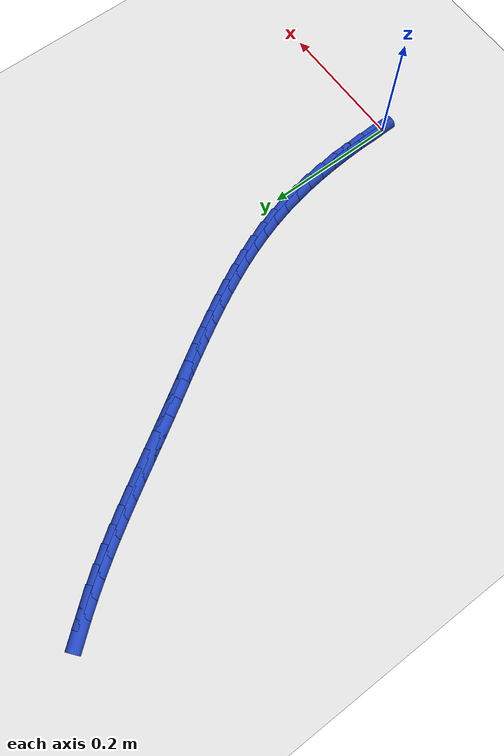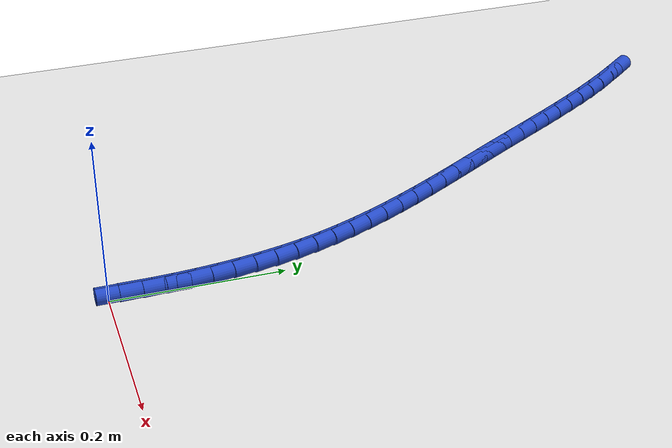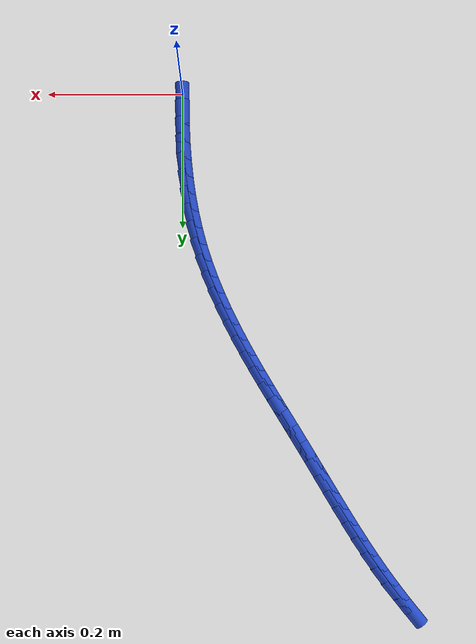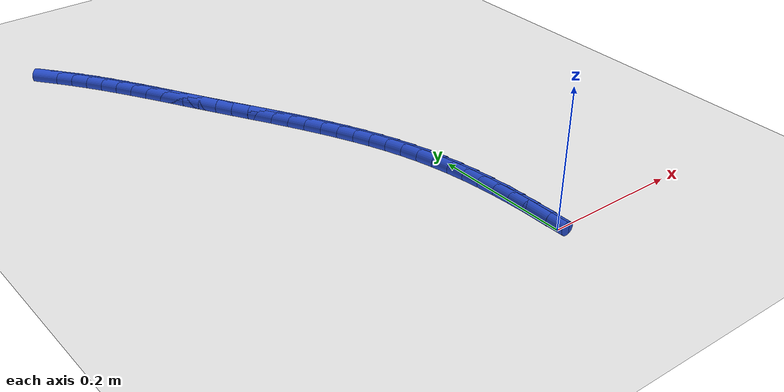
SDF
<sdf version="1.6">
 <world name="default">
  <model name="ground_plane">
   <static>1</static>
   <link name="link">
    <collision name="collision">
     <geometry><plane><normal>0 0 1</normal><size>100 100</size></plane></geometry>
     <surface><friction><ode><mu>100</mu><mu2>50</mu2></ode></friction></surface>
    </collision>
    <visual name="visual">
     <cast_shadows>0</cast_shadows>
     <geometry><plane><normal>0 0 1</normal><size>100 100</size></plane></geometry>
     <material>
      <script><uri>file://media/materials/scripts/gazebo.material</uri><name>Gazebo/WhiteGlow</name></script>
     </material>
    </visual>
   </link>
  </model>
  <model name="line">
   <link name="link_1">
    <pose>0.00013879050816110192 0.02581706088510633 0.01 0 1.57 -1.552005356154008</pose>
    <collision name="collision">
     <geometry><cylinder><radius>0.01</radius><length>0.08</length></cylinder></geometry>
    </collision>
    <visual name="visual">
     <material>
      <script><name>Gazebo/Blue</name><uri>file://media/materials/scripts/gazebo.material</uri></script>
     </material>
     <geometry><cylinder><radius>0.01</radius><length>0.08</length></cylinder></geometry>
    </visual>
   </link>
   <link name="link_2">
    <pose>-0.0003471206326306521 0.0516727740835173 0.01 0 1.57 -1.5254065276339013</pose>
    <collision name="collision">
     <geometry><cylinder><radius>0.01</radius><length>0.08</length></cylinder></geometry>
    </collision>
    <visual name="visual">
     <material>
      <script><name>Gazebo/Blue</name><uri>file://media/materials/scripts/gazebo.material</uri></script>
     </material>
     <geometry><cylinder><radius>0.01</radius><length>0.08</length></cylinder></geometry>
    </visual>
   </link>
   <link name="link_3">
    <pose>-0.001520814700794198 0.07751311598907709 0.01 0 1.57 -1.4962553160184355</pose>
    <collision name="collision">
     <geometry><cylinder><radius>0.01</radius><length>0.08</length></cylinder></geometry>
    </collision>
    <visual name="visual">
     <material>
      <script><name>Gazebo/Blue</name><uri>file://media/materials/scripts/gazebo.material</uri></script>
     </material>
     <geometry><cylinder><radius>0.01</radius><length>0.08</length></cylinder></geometry>
    </visual>
   </link>
   <link name="link_4">
    <pose>-0.003445372974748444 0.10328406299562987 0.01 0 1.57 -1.4644247783390028</pose>
    <collision name="collision">
     <geometry><cylinder><radius>0.01</radius><length>0.08</length></cylinder></geometry>
    </collision>
    <visual name="visual">
     <material>
      <script><name>Gazebo/Blue</name><uri>file://media/materials/scripts/gazebo.material</uri></script>
     </material>
     <geometry><cylinder><radius>0.01</radius><length>0.08</length></cylinder></geometry>
    </visual>
   </link>
   <link name="link_5">
    <pose>-0.006183876732912305 0.12893159149701983 0.01 0 1.57 -1.4297863929135664</pose>
    <collision name="collision">
     <geometry><cylinder><radius>0.01</radius><length>0.08</length></cylinder></geometry>
    </collision>
    <visual name="visual">
     <material>
      <script><name>Gazebo/Blue</name><uri>file://media/materials/scripts/gazebo.material</uri></script>
     </material>
     <geometry><cylinder><radius>0.01</radius><length>0.08</length></cylinder></geometry>
    </visual>
   </link>
   <link name="link_6">
    <pose>-0.009799407253704703 0.15440167788709117 0.01 0 1.57 -1.3922165311565011</pose>
    <collision name="collision">
     <geometry><cylinder><radius>0.01</radius><length>0.08</length></cylinder></geometry>
    </collision>
    <visual name="visual">
     <material>
      <script><name>Gazebo/Blue</name><uri>file://media/materials/scripts/gazebo.material</uri></script>
     </material>
     <geometry><cylinder><radius>0.01</radius><length>0.08</length></cylinder></geometry>
    </visual>
   </link>
   <link name="link_7">
    <pose>-0.01435504581554454 0.17964029855968802 0.01 0 1.57 -1.35160472331401</pose>
    <collision name="collision">
     <geometry><cylinder><radius>0.01</radius><length>0.08</length></cylinder></geometry>
    </collision>
    <visual name="visual">
     <material>
      <script><name>Gazebo/Blue</name><uri>file://media/materials/scripts/gazebo.material</uri></script>
     </material>
     <geometry><cylinder><radius>0.01</radius><length>0.08</length></cylinder></geometry>
    </visual>
   </link>
   <link name="link_8">
    <pose>-0.019913873696850735 0.20459342990865464 0.01 0 1.57 -1.3078639098746183</pose>
    <collision name="collision">
     <geometry><cylinder><radius>0.01</radius><length>0.08</length></cylinder></geometry>
    </collision>
    <visual name="visual">
     <material>
      <script><name>Gazebo/Blue</name><uri>file://media/materials/scripts/gazebo.material</uri></script>
     </material>
     <geometry><cylinder><radius>0.01</radius><length>0.08</length></cylinder></geometry>
    </visual>
   </link>
   <link name="link_9">
    <pose>-0.026538972176042196 0.22920704832783506 0.01 0 1.57 -1.261954005294418</pose>
    <collision name="collision">
     <geometry><cylinder><radius>0.01</radius><length>0.08</length></cylinder></geometry>
    </collision>
    <visual name="visual">
     <material>
      <script><name>Gazebo/Blue</name><uri>file://media/materials/scripts/gazebo.material</uri></script>
     </material>
     <geometry><cylinder><radius>0.01</radius><length>0.08</length></cylinder></geometry>
    </visual>
   </link>
   <link name="link_10">
    <pose>-0.03427036477463058 0.25343947586045384 0.01 0 1.57 -1.2187495711804412</pose>
    <collision name="collision">
     <geometry><cylinder><radius>0.01</radius><length>0.08</length></cylinder></geometry>
    </collision>
    <visual name="visual">
     <material>
      <script><name>Gazebo/Blue</name><uri>file://media/materials/scripts/gazebo.material</uri></script>
     </material>
     <geometry><cylinder><radius>0.01</radius><length>0.08</length></cylinder></geometry>
    </visual>
   </link>
   <link name="link_11">
    <pose>-0.04303837571493844 0.2773077700585919 0.01 0 1.57 -1.1798270908982167</pose>
    <collision name="collision">
     <geometry><cylinder><radius>0.01</radius><length>0.08</length></cylinder></geometry>
    </collision>
    <visual name="visual">
     <material>
      <script><name>Gazebo/Blue</name><uri>file://media/materials/scripts/gazebo.material</uri></script>
     </material>
     <geometry><cylinder><radius>0.01</radius><length>0.08</length></cylinder></geometry>
    </visual>
   </link>
   <link name="link_12">
    <pose>-0.05274074057202016 0.3008464371799679 0.01 0 1.57 -1.1452675998350514</pose>
    <collision name="collision">
     <geometry><cylinder><radius>0.01</radius><length>0.08</length></cylinder></geometry>
    </collision>
    <visual name="visual">
     <material>
      <script><name>Gazebo/Blue</name><uri>file://media/materials/scripts/gazebo.material</uri></script>
     </material>
     <geometry><cylinder><radius>0.01</radius><length>0.08</length></cylinder></geometry>
    </visual>
   </link>
   <link name="link_13">
    <pose>-0.0632751896257293 0.32408998631747243 0.01 0 1.57 -1.1150886530281037</pose>
    <collision name="collision">
     <geometry><cylinder><radius>0.01</radius><length>0.08</length></cylinder></geometry>
    </collision>
    <visual name="visual">
     <material>
      <script><name>Gazebo/Blue</name><uri>file://media/materials/scripts/gazebo.material</uri></script>
     </material>
     <geometry><cylinder><radius>0.01</radius><length>0.08</length></cylinder></geometry>
    </visual>
   </link>
   <link name="link_14">
    <pose>-0.07453945315591938 0.34707292656399574 0.01 0 1.57 -1.0892642495315623</pose>
    <collision name="collision">
     <geometry><cylinder><radius>0.01</radius><length>0.08</length></cylinder></geometry>
    </collision>
    <visual name="visual">
     <material>
      <script><name>Gazebo/Blue</name><uri>file://media/materials/scripts/gazebo.material</uri></script>
     </material>
     <geometry><cylinder><radius>0.01</radius><length>0.08</length></cylinder></geometry>
    </visual>
   </link>
   <link name="link_15">
    <pose>-0.0864312614424439 0.3698297670124281 0.01 0 1.57 -1.0677423304085614</pose>
    <collision name="collision">
     <geometry><cylinder><radius>0.01</radius><length>0.08</length></cylinder></geometry>
    </collision>
    <visual name="visual">
     <material>
      <script><name>Gazebo/Blue</name><uri>file://media/materials/scripts/gazebo.material</uri></script>
     </material>
     <geometry><cylinder><radius>0.01</radius><length>0.08</length></cylinder></geometry>
    </visual>
   </link>
   <link name="link_16">
    <pose>-0.09884834476515636 0.3923950167556597 0.01 0 1.57 -1.0504594010511847</pose>
    <collision name="collision">
     <geometry><cylinder><radius>0.01</radius><length>0.08</length></cylinder></geometry>
    </collision>
    <visual name="visual">
     <material>
      <script><name>Gazebo/Blue</name><uri>file://media/materials/scripts/gazebo.material</uri></script>
     </material>
     <geometry><cylinder><radius>0.01</radius><length>0.08</length></cylinder></geometry>
    </visual>
   </link>
   <link name="link_17">
    <pose>-0.11168843340391041 0.4148031848865813 0.01 0 1.57 -1.0373521458834554</pose>
    <collision name="collision">
     <geometry><cylinder><radius>0.01</radius><length>0.08</length></cylinder></geometry>
    </collision>
    <visual name="visual">
     <material>
      <script><name>Gazebo/Blue</name><uri>file://media/materials/scripts/gazebo.material</uri></script>
     </material>
     <geometry><cylinder><radius>0.01</radius><length>0.08</length></cylinder></geometry>
    </visual>
   </link>
   <link name="link_18">
    <pose>-0.12484925763855939 0.43708878049808275 0.01 0 1.57 -1.0283662225906132</pose>
    <collision name="collision">
     <geometry><cylinder><radius>0.01</radius><length>0.08</length></cylinder></geometry>
    </collision>
    <visual name="visual">
     <material>
      <script><name>Gazebo/Blue</name><uri>file://media/materials/scripts/gazebo.material</uri></script>
     </material>
     <geometry><cylinder><radius>0.01</radius><length>0.08</length></cylinder></geometry>
    </visual>
   </link>
   <link name="link_19">
    <pose>-0.13822854774895693 0.45928631268305464 0.01 0 1.57 -1.023462559176008</pose>
    <collision name="collision">
     <geometry><cylinder><radius>0.01</radius><length>0.08</length></cylinder></geometry>
    </collision>
    <visual name="visual">
     <material>
      <script><name>Gazebo/Blue</name><uri>file://media/materials/scripts/gazebo.material</uri></script>
     </material>
     <geometry><cylinder><radius>0.01</radius><length>0.08</length></cylinder></geometry>
    </visual>
   </link>
   <link name="link_20">
    <pose>-0.15172403401495654 0.48143029053438724 0.01 0 1.57 -1.0226214863067906</pose>
    <collision name="collision">
     <geometry><cylinder><radius>0.01</radius><length>0.08</length></cylinder></geometry>
    </collision>
    <visual name="visual">
     <material>
      <script><name>Gazebo/Blue</name><uri>file://media/materials/scripts/gazebo.material</uri></script>
     </material>
     <geometry><cylinder><radius>0.01</radius><length>0.08</length></cylinder></geometry>
    </visual>
   </link>
   <link name="link_21">
    <pose>-0.16523344671641177 0.5035552231449708 0.01 0 1.57 -1.0258405274097924</pose>
    <collision name="collision">
     <geometry><cylinder><radius>0.01</radius><length>0.08</length></cylinder></geometry>
    </collision>
    <visual name="visual">
     <material>
      <script><name>Gazebo/Blue</name><uri>file://media/materials/scripts/gazebo.material</uri></script>
     </material>
     <geometry><cylinder><radius>0.01</radius><length>0.08</length></cylinder></geometry>
    </visual>
   </link>
   <link name="link_22">
    <pose>-0.17865462096792287 0.5256955708049829 0.01 0 1.57 -1.0311594907561974</pose>
    <collision name="collision">
     <geometry><cylinder><radius>0.01</radius><length>0.08</length></cylinder></geometry>
    </collision>
    <visual name="visual">
     <material>
      <script><name>Gazebo/Blue</name><uri>file://media/materials/scripts/gazebo.material</uri></script>
     </material>
     <geometry><cylinder><radius>0.01</radius><length>0.08</length></cylinder></geometry>
    </visual>
   </link>
   <link name="link_23">
    <pose>-0.1919321180189764 0.5478640418357149 0.01 0 1.57 -1.0334885647334984</pose>
    <collision name="collision">
     <geometry><cylinder><radius>0.01</radius><length>0.08</length></cylinder></geometry>
    </collision>
    <visual name="visual">
     <material>
      <script><name>Gazebo/Blue</name><uri>file://media/materials/scripts/gazebo.material</uri></script>
     </material>
     <geometry><cylinder><radius>0.01</radius><length>0.08</length></cylinder></geometry>
    </visual>
   </link>
   <link name="link_24">
    <pose>-0.20513058125530645 0.5700174438746602 0.01 0 1.57 -1.0319988711001322</pose>
    <collision name="collision">
     <geometry><cylinder><radius>0.01</radius><length>0.08</length></cylinder></geometry>
    </collision>
    <visual name="visual">
     <material>
      <script><name>Gazebo/Blue</name><uri>file://media/materials/scripts/gazebo.material</uri></script>
     </material>
     <geometry><cylinder><radius>0.01</radius><length>0.08</length></cylinder></geometry>
    </visual>
   </link>
   <link name="link_25">
    <pose>-0.21833367757780164 0.5921037287249754 0.01 0 1.57 -1.0266655086733385</pose>
    <collision name="collision">
     <geometry><cylinder><radius>0.01</radius><length>0.08</length></cylinder></geometry>
    </collision>
    <visual name="visual">
     <material>
      <script><name>Gazebo/Blue</name><uri>file://media/materials/scripts/gazebo.material</uri></script>
     </material>
     <geometry><cylinder><radius>0.01</radius><length>0.08</length></cylinder></geometry>
    </visual>
   </link>
   <link name="link_26">
    <pose>-0.23162507388735043 0.6140708481898177 0.01 0 1.57 -1.01746261338969</pose>
    <collision name="collision">
     <geometry><cylinder><radius>0.01</radius><length>0.08</length></cylinder></geometry>
    </collision>
    <visual name="visual">
     <material>
      <script><name>Gazebo/Blue</name><uri>file://media/materials/scripts/gazebo.material</uri></script>
     </material>
     <geometry><cylinder><radius>0.01</radius><length>0.08</length></cylinder></geometry>
    </visual>
   </link>
   <link name="link_27">
    <pose>-0.2450884370848414 0.635866754072344 0.01 0 1.57 -1.0043657360217348</pose>
    <collision name="collision">
     <geometry><cylinder><radius>0.01</radius><length>0.08</length></cylinder></geometry>
    </collision>
    <visual name="visual">
     <material>
      <script><name>Gazebo/Blue</name><uri>file://media/materials/scripts/gazebo.material</uri></script>
     </material>
     <geometry><cylinder><radius>0.01</radius><length>0.08</length></cylinder></geometry>
    </visual>
   </link>
   <link name="link_28">
    <pose>-0.25880743407116313 0.657439398175711 0.01 0 1.57 -0.9873560394268667</pose>
    <collision name="collision">
     <geometry><cylinder><radius>0.01</radius><length>0.08</length></cylinder></geometry>
    </collision>
    <visual name="visual">
     <material>
      <script><name>Gazebo/Blue</name><uri>file://media/materials/scripts/gazebo.material</uri></script>
     </material>
     <geometry><cylinder><radius>0.01</radius><length>0.08</length></cylinder></geometry>
    </visual>
   </link>
   <link name="link_29">
    <pose>-0.27286573174720397 0.6787367323030751 0.01 0 1.57 -0.966426363254302</pose>
    <collision name="collision">
     <geometry><cylinder><radius>0.01</radius><length>0.08</length></cylinder></geometry>
    </collision>
    <visual name="visual">
     <material>
      <script><name>Gazebo/Blue</name><uri>file://media/materials/scripts/gazebo.material</uri></script>
     </material>
     <geometry><cylinder><radius>0.01</radius><length>0.08</length></cylinder></geometry>
    </visual>
   </link>
   <link name="link_30">
    <pose>-0.2873469970138525 0.699706708257594 0.01 0 1.57 -0.941654895026567</pose>
    <collision name="collision">
     <geometry><cylinder><radius>0.01</radius><length>0.08</length></cylinder></geometry>
    </collision>
    <visual name="visual">
     <material>
      <script><name>Gazebo/Blue</name><uri>file://media/materials/scripts/gazebo.material</uri></script>
     </material>
     <geometry><cylinder><radius>0.01</radius><length>0.08</length></cylinder></geometry>
    </visual>
   </link>
   <link name="link_31">
    <pose>-0.3023335885066445 0.7202983267427154 0.01 0 1.57 -0.9156896885942454</pose>
    <collision name="collision">
     <geometry><cylinder><radius>0.01</radius><length>0.08</length></cylinder></geometry>
    </collision>
    <visual name="visual">
     <material>
      <script><name>Gazebo/Blue</name><uri>file://media/materials/scripts/gazebo.material</uri></script>
     </material>
     <geometry><cylinder><radius>0.01</radius><length>0.08</length></cylinder></geometry>
    </visual>
   </link>
   <link name="link_32">
    <pose>-0.31785604619325664 0.7405021340212274 0.01 0 1.57 -0.8920092230248826</pose>
    <collision name="collision">
     <geometry><cylinder><radius>0.01</radius><length>0.08</length></cylinder></geometry>
    </collision>
    <visual name="visual">
     <material>
      <script><name>Gazebo/Blue</name><uri>file://media/materials/scripts/gazebo.material</uri></script>
     </material>
     <geometry><cylinder><radius>0.01</radius><length>0.08</length></cylinder></geometry>
    </visual>
   </link>
   <link name="link_271">
    <pose>0.00014933238138927375 0.025827292607773927 0.01 0 1.57 -1.5549025482206427</pose>
    <collision name="collision">
     <geometry><cylinder><radius>0.01</radius><length>0.08</length></cylinder></geometry>
    </collision>
    <visual name="visual">
     <material>
      <script><name>Gazebo/Blue</name><uri>file://media/materials/scripts/gazebo.material</uri></script>
     </material>
     <geometry><cylinder><radius>0.01</radius><length>0.08</length></cylinder></geometry>
    </visual>
   </link>
   <link name="link_272">
    <pose>-0.0002627856468052285 0.051754627864856476 0.01 0 1.57 -1.5657188409861427</pose>
    <collision name="collision">
     <geometry><cylinder><radius>0.01</radius><length>0.08</length></cylinder></geometry>
    </collision>
    <visual name="visual">
     <material>
      <script><name>Gazebo/Blue</name><uri>file://media/materials/scripts/gazebo.material</uri></script>
     </material>
     <geometry><cylinder><radius>0.01</radius><length>0.08</length></cylinder></geometry>
    </visual>
   </link>
  </model>
 </world>
</sdf>
